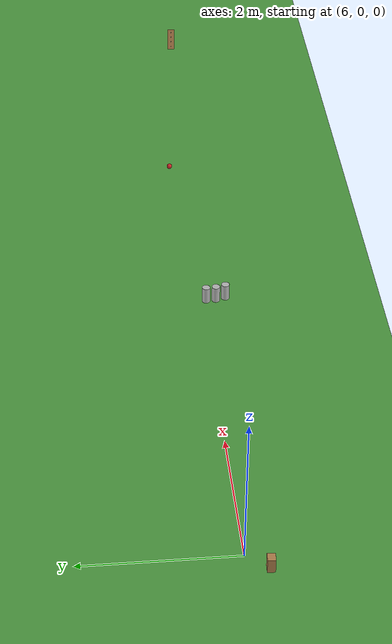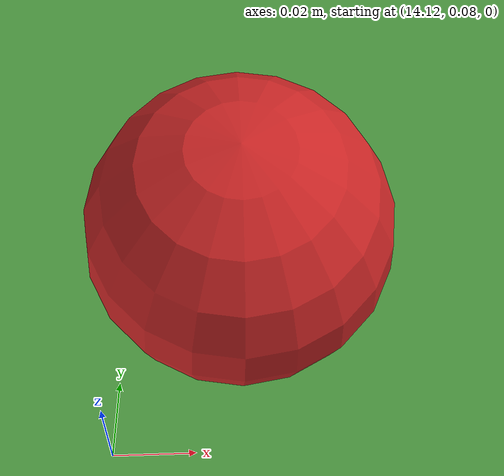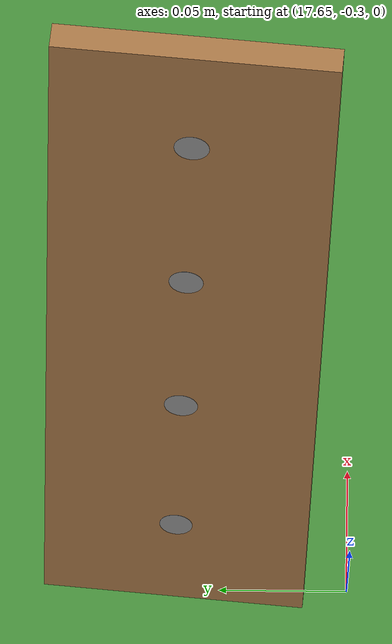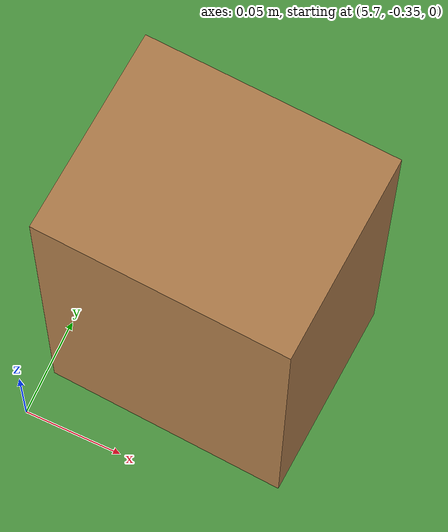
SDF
<sdf version="1.7">
 <world name="default">
  <scene>
   <grid>0</grid>
   <ambient>0.4 0.4 0.4 1</ambient>
   <background>0.7 0.7 0.7 1</background>
   <shadows>1</shadows>
  </scene>
  <light name="sun" type="directional">
   <pose>0 0 10 0 -0 0</pose>
   <diffuse>0.8 0.8 0.8 1</diffuse>
   <specular>0.2 0.2 0.2 1</specular>
   <attenuation>
    <range>1000</range>
    <constant>0.9</constant>
    <linear>0.01</linear>
    <quadratic>0.001</quadratic>
   </attenuation>
   <direction>-0.5 0.1 -0.9</direction>
   <spot><inner_angle>0</inner_angle><outer_angle>0</outer_angle><falloff>0</falloff></spot>
  </light>
  <model name="ground">
   <link name="body">
    <collision name="geom">
     <geometry><plane><normal>0 0 1</normal><size>1 1</size></plane></geometry>
     <surface><friction><ode><mu>100</mu><mu2>50</mu2></ode></friction></surface>
    </collision>
   </link>
   <static>1</static>
  </model>
  <model name="ground2">
   <pose>0.092084 -0.016553 -0.01 0 -0 0</pose>
   <static>1</static>
   <link name="ground">
    <collision name="ground_coll"><geometry><box><size>200 10 0.01</size></box></geometry></collision>
    <visual name="ground_vis">
     <geometry><box><size>200 10 0.01</size></box></geometry>
     <material>
      <script><uri>file://media/materials/scripts/gazebo.material</uri><name>Gazebo/Grass</name></script>
     </material>
    </visual>
   </link>
  </model>
  <model name="beer">
   <link name="link">
    <pose>0 0 0.115 0 -0 0</pose>
    <inertial>
     <mass>0.39</mass>
     <inertia><ixx>0.00058</ixx><ixy>0</ixy><ixz>0</ixz><iyy>0.00058</iyy><iyz>0</iyz><izz>0.00019</izz></inertia>
    </inertial>
    <collision name="collision">
     <geometry><cylinder><radius>0.055</radius><length>0.23</length></cylinder></geometry>
    </collision>
    <visual name="visual">
     <geometry><cylinder><radius>0.055</radius><length>0.23</length></cylinder></geometry>
     <material>
      <script>
       <uri>model://beer/materials/scripts</uri>
       <uri>model://beer/materials/textures</uri>
       <name>Beer/Diffuse</name>
      </script>
     </material>
    </visual>
   </link>
   <pose>10.8774 -0.211468 -8e-06 -0 -0 -1.69</pose>
  </model>
  <gravity>0 0 -9.8</gravity>
  <magnetic_field>6e-06 2.3e-05 -4.2e-05</magnetic_field>
  <atmosphere type="adiabatic"/>
  <physics type="ode">
   <max_step_size>0.001</max_step_size>
   <real_time_factor>1</real_time_factor>
   <real_time_update_rate>1000</real_time_update_rate>
  </physics>
  <spherical_coordinates>
   <surface_model>EARTH_WGS84</surface_model>
   <latitude_deg>0</latitude_deg>
   <longitude_deg>0</longitude_deg>
   <elevation>0</elevation>
   <heading_deg>0</heading_deg>
  </spherical_coordinates>
  <model name="wood_cube_3">
   <link name="link">
    <pose>-0 -0 0.106549 0 -0 0</pose>
    <inertial>
     <mass>1.21341</mass>
     <inertia>
      <ixx>0.00472807</ixx>
      <ixy>0</ixy>
      <ixz>0</ixz>
      <iyy>0.00523172</iyy>
      <iyz>0</iyz>
      <izz>0.0025294</izz>
     </inertia>
    </inertial>
    <visual name="visual">
     <geometry><box><size>0.122465 0.100084 0.191681</size></box></geometry>
     <material>
      <script><uri>file://media/materials/scripts/gazebo.material</uri><name>Gazebo/Wood</name></script>
      <shader type="pixel"/>
     </material>
    </visual>
    <collision name="collision">
     <geometry><box><size>0.122465 0.100084 0.191681</size></box></geometry>
     <surface>
      <friction>
       <ode><mu>1</mu><mu2>1</mu2><fdir1>0 0 0</fdir1><slip1>0</slip1><slip2>0</slip2></ode>
       <torsional>
        <coefficient>1</coefficient>
        <patch_radius>0</patch_radius>
        <surface_radius>0</surface_radius>
        <use_patch_radius>1</use_patch_radius>
        <ode><slip>0</slip></ode>
       </torsional>
      </friction>
      <bounce><restitution_coefficient>0</restitution_coefficient><threshold>1e+06</threshold></bounce>
      <contact>
       <collide_without_contact>0</collide_without_contact>
       <collide_without_contact_bitmask>1</collide_without_contact_bitmask>
       <collide_bitmask>1</collide_bitmask>
       <ode>
        <soft_cfm>0</soft_cfm>
        <soft_erp>0.2</soft_erp>
        <kp>1e+13</kp>
        <kd>1</kd>
        <max_vel>0.01</max_vel>
        <min_depth>0</min_depth>
       </ode>
       <bullet>
        <split_impulse>1</split_impulse>
        <split_impulse_penetration_threshold>-0.01</split_impulse_penetration_threshold>
        <soft_cfm>0</soft_cfm>
        <soft_erp>0.2</soft_erp>
        <kp>1e+13</kp>
        <kd>1</kd>
       </bullet>
      </contact>
     </surface>
    </collision>
   </link>
   <static>0</static>
   <pose>5.7673 -0.280015 -0.010708 -3e-06 -4e-06 -0.056803</pose>
  </model>
  <model name="beer_0">
   <link name="link">
    <pose>0 0 0.115 0 -0 0</pose>
    <inertial>
     <mass>0.39</mass>
     <inertia><ixx>0.00058</ixx><ixy>0</ixy><ixz>0</ixz><iyy>0.00058</iyy><iyz>0</iyz><izz>0.00019</izz></inertia>
    </inertial>
    <collision name="collision">
     <geometry><cylinder><radius>0.055</radius><length>0.23</length></cylinder></geometry>
    </collision>
    <visual name="visual">
     <geometry><cylinder><radius>0.055</radius><length>0.23</length></cylinder></geometry>
     <material>
      <script>
       <uri>model://beer/materials/scripts</uri>
       <uri>model://beer/materials/textures</uri>
       <name>Beer/Diffuse</name>
      </script>
     </material>
    </visual>
   </link>
   <pose>10.8707 -0.077997 -2e-06 1e-06 0 -2e-06</pose>
  </model>
  <model name="beer_1">
   <link name="link">
    <pose>0 0 0.115 0 -0 0</pose>
    <inertial>
     <mass>0.39</mass>
     <inertia><ixx>0.00058</ixx><ixy>0</ixy><ixz>0</ixz><iyy>0.00058</iyy><iyz>0</iyz><izz>0.00019</izz></inertia>
    </inertial>
    <collision name="collision">
     <geometry><cylinder><radius>0.055</radius><length>0.23</length></cylinder></geometry>
    </collision>
    <visual name="visual">
     <geometry><cylinder><radius>0.055</radius><length>0.23</length></cylinder></geometry>
     <material>
      <script>
       <uri>model://beer/materials/scripts</uri>
       <uri>model://beer/materials/textures</uri>
       <name>Beer/Diffuse</name>
      </script>
     </material>
    </visual>
   </link>
   <pose>10.9169 -0.345438 -2e-06 1e-06 0 -2e-06</pose>
  </model>
  <model name="cricket_ball">
   <link name="link">
    <pose>0 0 0.0375 0 -0 0</pose>
    <inertial>
     <mass>0.1467</mass>
     <inertia>
      <ixx>8.25187e-05</ixx>
      <ixy>0</ixy>
      <ixz>0</ixz>
      <iyy>8.25187e-05</iyy>
      <iyz>0</iyz>
      <izz>8.25187e-05</izz>
     </inertia>
    </inertial>
    <collision name="collision">
     <geometry><sphere><radius>0.0375</radius></sphere></geometry>
     <surface>
      <contact>
       <poissons_ratio>0.347</poissons_ratio>
       <elastic_modulus>8.8e+09</elastic_modulus>
       <ode><kp>100000</kp><kd>100</kd><max_vel>100</max_vel><min_depth>0.001</min_depth></ode>
      </contact>
      <friction>
       <torsional>
        <coefficient>1</coefficient>
        <use_patch_radius>0</use_patch_radius>
        <surface_radius>0.01</surface_radius>
       </torsional>
      </friction>
     </surface>
    </collision>
    <visual name="visual">
     <geometry><sphere><radius>0.0375</radius></sphere></geometry>
     <material>
      <script><uri>file://media/materials/scripts/gazebo.material</uri><name>Gazebo/Red</name></script>
     </material>
    </visual>
    <velocity_decay><linear>0</linear><angular>0.005</angular></velocity_decay>
   </link>
   <pose>14.1519 0.131883 0.001238 0.34838 -0.000674 -0.004364</pose>
  </model>
  <model name="wooden_board">
   <link name="base">
    <pose>0 0 0.00523 0 -0 0</pose>
    <inertial>
     <mass>0.2765</mass>
     <inertia>
      <ixx>0.0025148</ixx>
      <ixy>0</ixy>
      <ixz>0</ixz>
      <iyy>0.00024037</iyy>
      <iyz>0</iyz>
      <izz>0.00275013</izz>
     </inertia>
    </inertial>
    <collision name="collision">
     <geometry><box><size>0.1016 0.3302 0.01046</size></box></geometry>
     <surface>
      <contact>
       <poissons_ratio>0.347</poissons_ratio>
       <elastic_modulus>8.8e+09</elastic_modulus>
       <ode><kp>100000</kp><kd>100</kd><max_vel>100</max_vel><min_depth>0.001</min_depth></ode>
      </contact>
      <friction>
       <torsional>
        <coefficient>1</coefficient>
        <use_patch_radius>0</use_patch_radius>
        <surface_radius>0.01</surface_radius>
       </torsional>
      </friction>
     </surface>
    </collision>
    <visual name="visual">
     <geometry><box><size>0.1016 0.3302 0.01046</size></box></geometry>
     <material>
      <script><uri>file://media/materials/scripts/gazebo.material</uri><name>Gazebo/Wood</name></script>
     </material>
    </visual>
    <visual name="tee_nut_1">
     <pose>0 -0.116 0 0 -0 0</pose>
     <geometry><cylinder><radius>0.00635</radius><length>0.0105646</length></cylinder></geometry>
     <material>
      <script><uri>file://media/materials/scripts/gazebo.material</uri><name>Gazebo/Grey</name></script>
     </material>
    </visual>
    <visual name="tee_nut_2">
     <pose>0 -0.038 0 0 -0 0</pose>
     <geometry><cylinder><radius>0.00635</radius><length>0.0105646</length></cylinder></geometry>
     <material>
      <script><uri>file://media/materials/scripts/gazebo.material</uri><name>Gazebo/Grey</name></script>
     </material>
    </visual>
    <visual name="tee_nut_3">
     <pose>0 0.038 0 0 -0 0</pose>
     <geometry><cylinder><radius>0.00635</radius><length>0.0105646</length></cylinder></geometry>
     <material>
      <script><uri>file://media/materials/scripts/gazebo.material</uri><name>Gazebo/Grey</name></script>
     </material>
    </visual>
    <visual name="tee_nut_4">
     <pose>0 0.116 0 0 -0 0</pose>
     <geometry><cylinder><radius>0.00635</radius><length>0.0105646</length></cylinder></geometry>
     <material>
      <script><uri>file://media/materials/scripts/gazebo.material</uri><name>Gazebo/Grey</name></script>
     </material>
    </visual>
   </link>
   <pose>17.7021 -0.236525 0.157722 1.2922 0.000187 -1.65285</pose>
  </model>
 </world>
</sdf>
